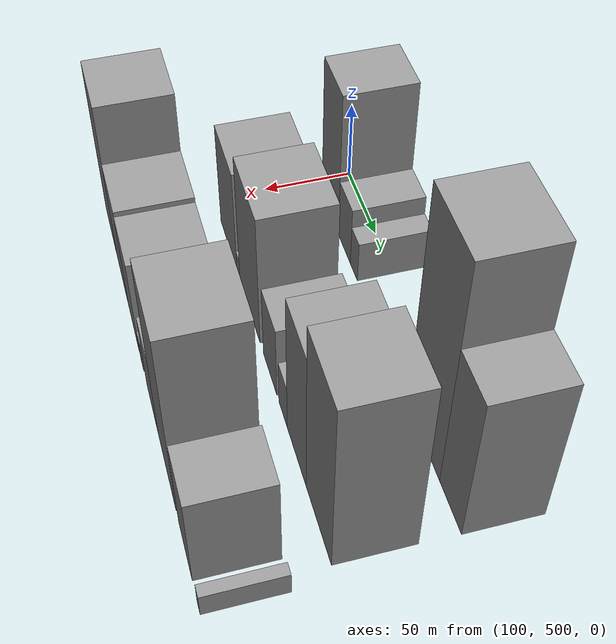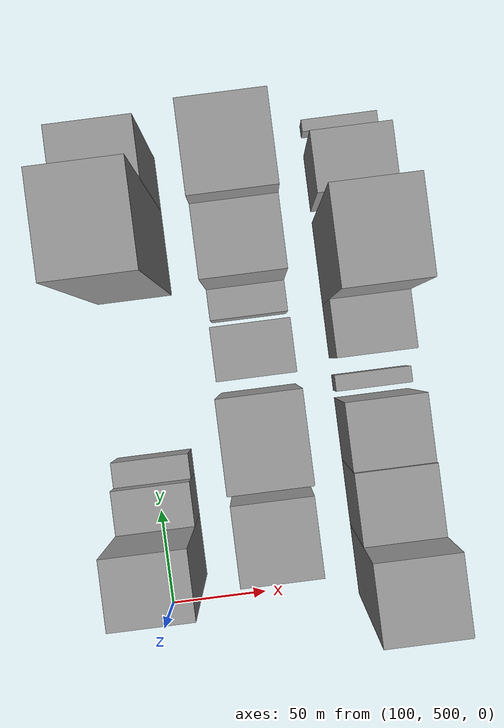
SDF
<sdf version="1.6">
 <world name="default">
  <model name="building_41">
   <static>1</static>
   <pose>100.0000 529.2690 0 0.000000 0.000000 0.000000</pose>
   <link name="link">
    <pose>0 0 48.00 0 0 0</pose>
    <collision name="collision"><geometry><box><size>40.0000 32.7993 96.0000</size></box></geometry></collision>
    <visual name="visual">
     <cast_shadows>0</cast_shadows>
     <geometry><box><size>40.0000 32.7993 96.0000</size></box></geometry>
     <material>
      <script>
       <uri>model://grey_wall/materials/scripts</uri>
       <uri>model://grey_wall/materials/textures</uri>
       <name>vrc/grey_wall</name>
      </script>
     </material>
    </visual>
   </link>
  </model>
  <model name="building_42">
   <static>1</static>
   <pose>100.0000 556.9365 0 0.000000 0.000000 0.000000</pose>
   <link name="link">
    <pose>0 0 19.50 0 0 0</pose>
    <collision name="collision"><geometry><box><size>40.0000 22.5357 39.0000</size></box></geometry></collision>
    <visual name="visual">
     <cast_shadows>0</cast_shadows>
     <geometry><box><size>40.0000 22.5357 39.0000</size></box></geometry>
     <material>
      <script>
       <uri>model://grey_wall/materials/scripts</uri>
       <uri>model://grey_wall/materials/textures</uri>
       <name>vrc/grey_wall</name>
      </script>
     </material>
    </visual>
   </link>
  </model>
  <model name="building_43">
   <static>1</static>
   <pose>100.0000 574.7248 0 0.000000 0.000000 0.000000</pose>
   <link name="link">
    <pose>0 0 13.50 0 0 0</pose>
    <collision name="collision"><geometry><box><size>40.0000 13.0408 27.0000</size></box></geometry></collision>
    <visual name="visual">
     <cast_shadows>0</cast_shadows>
     <geometry><box><size>40.0000 13.0408 27.0000</size></box></geometry>
     <material>
      <script>
       <uri>model://grey_wall/materials/scripts</uri>
       <uri>model://grey_wall/materials/textures</uri>
       <name>vrc/grey_wall</name>
      </script>
     </material>
    </visual>
   </link>
  </model>
  <model name="building_44">
   <static>1</static>
   <pose>100.0000 687.4828 0 0.000000 0.000000 0.000000</pose>
   <link name="link">
    <pose>0 0 73.50 0 0 0</pose>
    <collision name="collision"><geometry><box><size>40.0000 45.4917 147.0000</size></box></geometry></collision>
    <visual name="visual">
     <cast_shadows>0</cast_shadows>
     <geometry><box><size>40.0000 45.4917 147.0000</size></box></geometry>
     <material>
      <script>
       <uri>model://grey_wall/materials/scripts</uri>
       <uri>model://grey_wall/materials/textures</uri>
       <name>vrc/grey_wall</name>
      </script>
     </material>
    </visual>
   </link>
  </model>
  <model name="building_45">
   <static>1</static>
   <pose>100.0000 724.6942 0 0.000000 0.000000 0.000000</pose>
   <link name="link">
    <pose>0 0 48.00 0 0 0</pose>
    <collision name="collision"><geometry><box><size>40.0000 28.9312 96.0000</size></box></geometry></collision>
    <visual name="visual">
     <cast_shadows>0</cast_shadows>
     <geometry><box><size>40.0000 28.9312 96.0000</size></box></geometry>
     <material>
      <script>
       <uri>model://grey_wall/materials/scripts</uri>
       <uri>model://grey_wall/materials/textures</uri>
       <name>vrc/grey_wall</name>
      </script>
     </material>
    </visual>
   </link>
  </model>
  <model name="building_92">
   <static>1</static>
   <pose>160.0000 538.1155 0 0.000000 0.000000 0.000000</pose>
   <link name="link">
    <pose>0 0 34.50 0 0 0</pose>
    <collision name="collision"><geometry><box><size>40.0000 38.9938 69.0000</size></box></geometry></collision>
    <visual name="visual">
     <cast_shadows>0</cast_shadows>
     <geometry><box><size>40.0000 38.9938 69.0000</size></box></geometry>
     <material>
      <script>
       <uri>model://grey_wall/materials/scripts</uri>
       <uri>model://grey_wall/materials/textures</uri>
       <name>vrc/grey_wall</name>
      </script>
     </material>
    </visual>
   </link>
  </model>
  <model name="building_93">
   <static>1</static>
   <pose>160.0000 561.1563 0 0.000000 0.000000 0.000000</pose>
   <link name="link">
    <pose>0 0 7.50 0 0 0</pose>
    <collision name="collision"><geometry><box><size>40.0000 7.0879 15.0000</size></box></geometry></collision>
    <visual name="visual">
     <cast_shadows>0</cast_shadows>
     <geometry><box><size>40.0000 7.0879 15.0000</size></box></geometry>
     <material>
      <script>
       <uri>model://grey_wall/materials/scripts</uri>
       <uri>model://grey_wall/materials/textures</uri>
       <name>vrc/grey_wall</name>
      </script>
     </material>
    </visual>
   </link>
  </model>
  <model name="building_94">
   <static>1</static>
   <pose>160.0000 586.8665 0 0.000000 0.000000 0.000000</pose>
   <link name="link">
    <pose>0 0 43.50 0 0 0</pose>
    <collision name="collision"><geometry><box><size>40.0000 44.3326 87.0000</size></box></geometry></collision>
    <visual name="visual">
     <cast_shadows>0</cast_shadows>
     <geometry><box><size>40.0000 44.3326 87.0000</size></box></geometry>
     <material>
      <script>
       <uri>model://grey_wall/materials/scripts</uri>
       <uri>model://grey_wall/materials/textures</uri>
       <name>vrc/grey_wall</name>
      </script>
     </material>
    </visual>
   </link>
  </model>
  <model name="building_95">
   <static>1</static>
   <pose>160.0000 629.5499 0 0.000000 0.000000 0.000000</pose>
   <link name="link">
    <pose>0 0 24.00 0 0 0</pose>
    <collision name="collision"><geometry><box><size>40.0000 27.0341 48.0000</size></box></geometry></collision>
    <visual name="visual">
     <cast_shadows>0</cast_shadows>
     <geometry><box><size>40.0000 27.0341 48.0000</size></box></geometry>
     <material>
      <script>
       <uri>model://grey_wall/materials/scripts</uri>
       <uri>model://grey_wall/materials/textures</uri>
       <name>vrc/grey_wall</name>
      </script>
     </material>
    </visual>
   </link>
  </model>
  <model name="building_96">
   <static>1</static>
   <pose>160.0000 655.0114 0 0.000000 0.000000 0.000000</pose>
   <link name="link">
    <pose>0 0 15.00 0 0 0</pose>
    <collision name="collision"><geometry><box><size>40.0000 15.8890 30.0000</size></box></geometry></collision>
    <visual name="visual">
     <cast_shadows>0</cast_shadows>
     <geometry><box><size>40.0000 15.8890 30.0000</size></box></geometry>
     <material>
      <script>
       <uri>model://grey_wall/materials/scripts</uri>
       <uri>model://grey_wall/materials/textures</uri>
       <name>vrc/grey_wall</name>
      </script>
     </material>
    </visual>
   </link>
  </model>
  <model name="building_97">
   <static>1</static>
   <pose>160.0000 679.9207 0 0.000000 0.000000 0.000000</pose>
   <link name="link">
    <pose>0 0 46.50 0 0 0</pose>
    <collision name="collision"><geometry><box><size>40.0000 33.9296 93.0000</size></box></geometry></collision>
    <visual name="visual">
     <cast_shadows>0</cast_shadows>
     <geometry><box><size>40.0000 33.9296 93.0000</size></box></geometry>
     <material>
      <script>
       <uri>model://grey_wall/materials/scripts</uri>
       <uri>model://grey_wall/materials/textures</uri>
       <name>vrc/grey_wall</name>
      </script>
     </material>
    </visual>
   </link>
  </model>
  <model name="building_98">
   <static>1</static>
   <pose>160.0000 717.7402 0 0.000000 0.000000 0.000000</pose>
   <link name="link">
    <pose>0 0 57.00 0 0 0</pose>
    <collision name="collision"><geometry><box><size>40.0000 41.7093 114.0000</size></box></geometry></collision>
    <visual name="visual">
     <cast_shadows>0</cast_shadows>
     <geometry><box><size>40.0000 41.7093 114.0000</size></box></geometry>
     <material>
      <script>
       <uri>model://grey_wall/materials/scripts</uri>
       <uri>model://grey_wall/materials/textures</uri>
       <name>vrc/grey_wall</name>
      </script>
     </material>
    </visual>
   </link>
  </model>
  <model name="building_145">
   <static>1</static>
   <pose>220.0000 511.0864 0 0.000000 0.000000 0.000000</pose>
   <link name="link">
    <pose>0 0 51.00 0 0 0</pose>
    <collision name="collision"><geometry><box><size>40.0000 37.7275 102.0000</size></box></geometry></collision>
    <visual name="visual">
     <cast_shadows>0</cast_shadows>
     <geometry><box><size>40.0000 37.7275 102.0000</size></box></geometry>
     <material>
      <script>
       <uri>model://grey_wall/materials/scripts</uri>
       <uri>model://grey_wall/materials/textures</uri>
       <name>vrc/grey_wall</name>
      </script>
     </material>
    </visual>
   </link>
  </model>
  <model name="building_146">
   <static>1</static>
   <pose>220.0000 547.6094 0 0.000000 0.000000 0.000000</pose>
   <link name="link">
    <pose>0 0 33.00 0 0 0</pose>
    <collision name="collision"><geometry><box><size>40.0000 35.3186 66.0000</size></box></geometry></collision>
    <visual name="visual">
     <cast_shadows>0</cast_shadows>
     <geometry><box><size>40.0000 35.3186 66.0000</size></box></geometry>
     <material>
      <script>
       <uri>model://grey_wall/materials/scripts</uri>
       <uri>model://grey_wall/materials/textures</uri>
       <name>vrc/grey_wall</name>
      </script>
     </material>
    </visual>
   </link>
  </model>
  <model name="building_147">
   <static>1</static>
   <pose>220.0000 582.0563 0 0.000000 0.000000 0.000000</pose>
   <link name="link">
    <pose>0 0 31.50 0 0 0</pose>
    <collision name="collision"><geometry><box><size>40.0000 33.5753 63.0000</size></box></geometry></collision>
    <visual name="visual">
     <cast_shadows>0</cast_shadows>
     <geometry><box><size>40.0000 33.5753 63.0000</size></box></geometry>
     <material>
      <script>
       <uri>model://grey_wall/materials/scripts</uri>
       <uri>model://grey_wall/materials/textures</uri>
       <name>vrc/grey_wall</name>
      </script>
     </material>
    </visual>
   </link>
  </model>
  <model name="building_148">
   <static>1</static>
   <pose>220.0000 607.0622 0 0.000000 0.000000 0.000000</pose>
   <link name="link">
    <pose>0 0 10.50 0 0 0</pose>
    <collision name="collision"><geometry><box><size>40.0000 8.4365 21.0000</size></box></geometry></collision>
    <visual name="visual">
     <cast_shadows>0</cast_shadows>
     <geometry><box><size>40.0000 8.4365 21.0000</size></box></geometry>
     <material>
      <script>
       <uri>model://grey_wall/materials/scripts</uri>
       <uri>model://grey_wall/materials/textures</uri>
       <name>vrc/grey_wall</name>
      </script>
     </material>
    </visual>
   </link>
  </model>
  <model name="building_149">
   <static>1</static>
   <pose>220.0000 634.7570 0 0.000000 0.000000 0.000000</pose>
   <link name="link">
    <pose>0 0 25.50 0 0 0</pose>
    <collision name="collision"><geometry><box><size>40.0000 28.9530 51.0000</size></box></geometry></collision>
    <visual name="visual">
     <cast_shadows>0</cast_shadows>
     <geometry><box><size>40.0000 28.9530 51.0000</size></box></geometry>
     <material>
      <script>
       <uri>model://grey_wall/materials/scripts</uri>
       <uri>model://grey_wall/materials/textures</uri>
       <name>vrc/grey_wall</name>
      </script>
     </material>
    </visual>
   </link>
  </model>
  <model name="building_150">
   <static>1</static>
   <pose>220.0000 671.5532 0 0.000000 0.000000 0.000000</pose>
   <link name="link">
    <pose>0 0 60.00 0 0 0</pose>
    <collision name="collision"><geometry><box><size>40.0000 44.6393 120.0000</size></box></geometry></collision>
    <visual name="visual">
     <cast_shadows>0</cast_shadows>
     <geometry><box><size>40.0000 44.6393 120.0000</size></box></geometry>
     <material>
      <script>
       <uri>model://grey_wall/materials/scripts</uri>
       <uri>model://grey_wall/materials/textures</uri>
       <name>vrc/grey_wall</name>
      </script>
     </material>
    </visual>
   </link>
  </model>
  <model name="building_151">
   <static>1</static>
   <pose>220.0000 714.9183 0 0.000000 0.000000 0.000000</pose>
   <link name="link">
    <pose>0 0 30.00 0 0 0</pose>
    <collision name="collision"><geometry><box><size>40.0000 30.0909 60.0000</size></box></geometry></collision>
    <visual name="visual">
     <cast_shadows>0</cast_shadows>
     <geometry><box><size>40.0000 30.0909 60.0000</size></box></geometry>
     <material>
      <script>
       <uri>model://grey_wall/materials/scripts</uri>
       <uri>model://grey_wall/materials/textures</uri>
       <name>vrc/grey_wall</name>
      </script>
     </material>
    </visual>
   </link>
  </model>
  <model name="building_152">
   <static>1</static>
   <pose>220.0000 743.1074 0 0.000000 0.000000 0.000000</pose>
   <link name="link">
    <pose>0 0 7.50 0 0 0</pose>
    <collision name="collision"><geometry><box><size>40.0000 6.2872 15.0000</size></box></geometry></collision>
    <visual name="visual">
     <cast_shadows>0</cast_shadows>
     <geometry><box><size>40.0000 6.2872 15.0000</size></box></geometry>
     <material>
      <script>
       <uri>model://grey_wall/materials/scripts</uri>
       <uri>model://grey_wall/materials/textures</uri>
       <name>vrc/grey_wall</name>
      </script>
     </material>
    </visual>
   </link>
  </model>
 </world>
</sdf>
